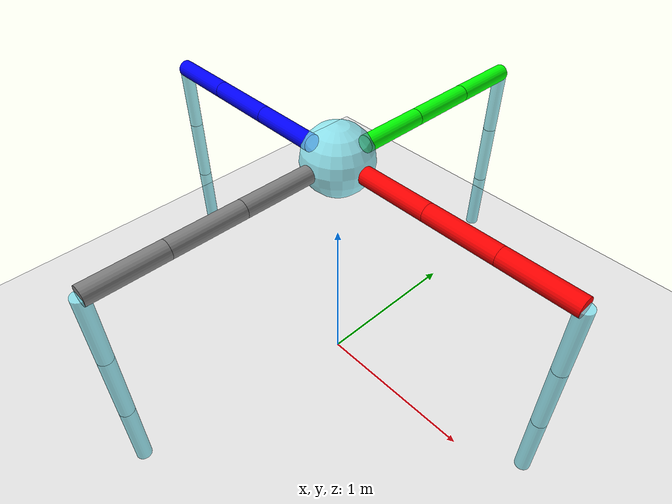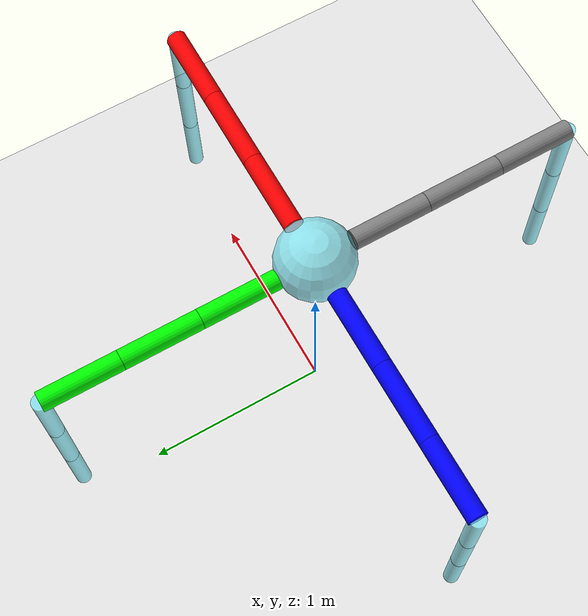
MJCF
<mujoco model="spider_robot"><actuator><motor name="leg1_upper_joint_motor" joint="leg1_upper_joint" gear="300" /><motor name="leg5_upper_joint_motor" joint="leg5_upper_joint" gear="300" /><motor name="leg9_upper_joint_motor" joint="leg9_upper_joint" gear="300" /><motor name="leg1_lower_joint_motor" joint="leg1_lower_joint" gear="300" /><motor name="leg5_lower_joint_motor" joint="leg5_lower_joint" gear="300" /><motor name="leg9_lower_joint_motor" joint="leg9_lower_joint" gear="300" /><motor name="leg2_upper_joint_motor" joint="leg2_upper_joint" gear="300" /><motor name="leg6_upper_joint_motor" joint="leg6_upper_joint" gear="300" /><motor name="leg10_upper_joint_motor" joint="leg10_upper_joint" gear="300" /><motor name="leg2_lower_joint_motor" joint="leg2_lower_joint" gear="300" /><motor name="leg6_lower_joint_motor" joint="leg6_lower_joint" gear="300" /><motor name="leg10_lower_joint_motor" joint="leg10_lower_joint" gear="300" /><motor name="leg3_upper_joint_motor" joint="leg3_upper_joint" gear="300" /><motor name="leg7_upper_joint_motor" joint="leg7_upper_joint" gear="300" /><motor name="leg11_upper_joint_motor" joint="leg11_upper_joint" gear="300" /><motor name="leg3_lower_joint_motor" joint="leg3_lower_joint" gear="300" /><motor name="leg7_lower_joint_motor" joint="leg7_lower_joint" gear="300" /><motor name="leg11_lower_joint_motor" joint="leg11_lower_joint" gear="300" /><motor name="leg4_upper_joint_motor" joint="leg4_upper_joint" gear="300" /><motor name="leg8_upper_joint_motor" joint="leg8_upper_joint" gear="300" /><motor name="leg12_upper_joint_motor" joint="leg12_upper_joint" gear="300" /><motor name="leg4_lower_joint_motor" joint="leg4_lower_joint" gear="300" /><motor name="leg8_lower_joint_motor" joint="leg8_lower_joint" gear="300" /><motor name="leg12_lower_joint_motor" joint="leg12_lower_joint" gear="300" /></actuator><option gravity="0 0 -9.81" /><worldbody><light diffuse=".5 .5 .5" pos="0 0 6" dir="0 0 -2" /><geom type="plane" size="5 5 0.1" rgba=".9 .9 .9 1" mass="1" /><body name="main" pos="0 0 1.5"><joint type="free" /><geom type="sphere" size="0.2" rgba="0.486 0.917 0.97 0.75" /><body name="leg1_upper_leg" pos="0.4 0 0"><joint name="leg1_upper_joint" type="hinge" pos="-0.2 0 0" axis="0 1 0" range="-15 0" damping="0.1" /><geom type="cylinder" size="0.05 0.2" rgba="1 0 0 1" euler="0 90 0" mass="2" /><body name="leg5_upper_leg" pos="0.4 0 0"><joint name="leg5_upper_joint" type="hinge" pos="-0.2 0 0" axis="0 1 0" range="-15 0" damping="0.1" /><geom type="cylinder" size="0.05 0.2" rgba="1 0 0 1" euler="0 90 0" mass="2" /><body name="leg9_upper_leg" pos="0.4 0 0"><joint name="leg9_upper_joint" type="hinge" pos="-0.2 0 0" axis="0 1 0" range="-15 0" damping="0.1" /><geom type="cylinder" size="0.05 0.2" rgba="1 0 0 1" euler="0 90 0" mass="2" /><body name="leg1_lower_leg" pos="0.2 0 -0.2"><joint name="leg1_lower_joint" type="hinge" pos="0 0 0.2" axis="0 1 0" range="0 30" damping="0.1" /><geom type="cylinder" pos="0 0 0" size="0.04 0.2" rgba="0.486 0.917 0.97 0.75" mass="10" /><body name="leg5_lower_leg" pos="0 0 -0.4"><joint name="leg5_lower_joint" type="hinge" pos="0 0 0.2" axis="0 1 0" range="0 30" damping="0.1" /><geom type="cylinder" pos="0 0 0" size="0.04 0.2" rgba="0.486 0.917 0.97 0.75" mass="10" /><body name="leg9_lower_leg" pos="0 0 -0.4"><joint name="leg9_lower_joint" type="hinge" pos="0 0 0.2" axis="0 1 0" range="0 30" damping="0.1" /><geom type="cylinder" pos="0 0 0" size="0.04 0.2" rgba="0.486 0.917 0.97 0.75" mass="10" /></body></body></body></body></body></body><body name="leg2_upper_leg" pos="0 0.4 0"><joint name="leg2_upper_joint" type="hinge" pos="0 -0.2 0" axis="1 0 0" range="0 15" damping="0.1" /><geom type="cylinder" size="0.05 0.2" rgba="0 1 0 1" euler="90 0 0" mass="2" /><body name="leg6_upper_leg" pos="0 0.4 0"><joint name="leg6_upper_joint" type="hinge" pos="0 -0.2 0" axis="1 0 0" range="0 15" damping="0.1" /><geom type="cylinder" size="0.05 0.2" rgba="0 1 0 1" euler="90 0 0" mass="2" /><body name="leg10_upper_leg" pos="0 0.4 0"><joint name="leg10_upper_joint" type="hinge" pos="0 -0.2 0" axis="1 0 0" range="0 15" damping="0.1" /><geom type="cylinder" size="0.05 0.2" rgba="0 1 0 1" euler="90 0 0" mass="2" /><body name="leg2_lower_leg" pos="0 0.2 -0.2"><joint name="leg2_lower_joint" type="hinge" pos="0 0 0.2" axis="1 0 0" range="-30 0" damping="0.1" /><geom type="cylinder" pos="0 0 0" size="0.04 0.2" rgba="0.486 0.917 0.97 0.75" mass="10" /><body name="leg6_lower_leg" pos="0 0 -0.4"><joint name="leg6_lower_joint" type="hinge" pos="0 0 0.2" axis="1 0 0" range="-30 0" damping="0.1" /><geom type="cylinder" pos="0 0 0" size="0.04 0.2" rgba="0.486 0.917 0.97 0.75" mass="10" /><body name="leg10_lower_leg" pos="0 0 -0.4"><joint name="leg10_lower_joint" type="hinge" pos="0 0 0.2" axis="1 0 0" range="-30 0" damping="0.1" /><geom type="cylinder" pos="0 0 0" size="0.04 0.2" rgba="0.486 0.917 0.97 0.75" mass="10" /></body></body></body></body></body></body><body name="leg3_upper_leg" pos="-0.4 0 0"><joint name="leg3_upper_joint" type="hinge" pos="0.2 0 0" axis="0 1 0" range="0 15" damping="0.1" /><geom type="cylinder" size="0.05 0.2" rgba="0 0 1 1" euler="0 -90 0" mass="2" /><body name="leg7_upper_leg" pos="-0.4 0 0"><joint name="leg7_upper_joint" type="hinge" pos="0.2 0 0" axis="0 1 0" range="0 15" damping="0.1" /><geom type="cylinder" size="0.05 0.2" rgba="0 0 1 1" euler="0 -90 0" mass="2" /><body name="leg11_upper_leg" pos="-0.4 0 0"><joint name="leg11_upper_joint" type="hinge" pos="0.2 0 0" axis="0 1 0" range="0 15" damping="0.1" /><geom type="cylinder" size="0.05 0.2" rgba="0 0 1 1" euler="0 -90 0" mass="2" /><body name="leg3_lower_leg" pos="-0.2 0 -0.2"><joint name="leg3_lower_joint" type="hinge" pos="0 0 0.2" axis="0 1 0" range="-30 0" damping="0.1" /><geom type="cylinder" pos="0 0 0" size="0.04 0.2" rgba="0.486 0.917 0.97 0.75" mass="10" /><body name="leg7_lower_leg" pos="0 0 -0.4"><joint name="leg7_lower_joint" type="hinge" pos="0 0 0.2" axis="0 1 0" range="-30 0" damping="0.1" /><geom type="cylinder" pos="0 0 0" size="0.04 0.2" rgba="0.486 0.917 0.97 0.75" mass="10" /><body name="leg11_lower_leg" pos="0 0 -0.4"><joint name="leg11_lower_joint" type="hinge" pos="0 0 0.2" axis="0 1 0" range="-30 0" damping="0.1" /><geom type="cylinder" pos="0 0 0" size="0.04 0.2" rgba="0.486 0.917 0.97 0.75" mass="10" /></body></body></body></body></body></body><body name="leg4_upper_leg" pos="0 -0.4 0"><joint name="leg4_upper_joint" type="hinge" pos="0 0.2 0" axis="1 0 0" range="-15 0" damping="0.1" /><geom type="cylinder" size="0.05 0.2" rgba="0.5 0.5 0.5 1" euler="-90 0 0" mass="2" /><body name="leg8_upper_leg" pos="0 -0.4 0"><joint name="leg8_upper_joint" type="hinge" pos="0 0.2 0" axis="1 0 0" range="-15 0" damping="0.1" /><geom type="cylinder" size="0.05 0.2" rgba="0.5 0.5 0.5 1" euler="-90 0 0" mass="2" /><body name="leg12_upper_leg" pos="0 -0.4 0"><joint name="leg12_upper_joint" type="hinge" pos="0 0.2 0" axis="1 0 0" range="-15 0" damping="0.1" /><geom type="cylinder" size="0.05 0.2" rgba="0.5 0.5 0.5 1" euler="-90 0 0" mass="2" /><body name="leg4_lower_leg" pos="0 -0.2 -0.2"><joint name="leg4_lower_joint" type="hinge" pos="0 0 0.2" axis="1 0 0" range="0 30" damping="0.1" /><geom type="cylinder" pos="0 0 0" size="0.04 0.2" rgba="0.486 0.917 0.97 0.75" mass="10" /><body name="leg8_lower_leg" pos="0 0 -0.4"><joint name="leg8_lower_joint" type="hinge" pos="0 0 0.2" axis="1 0 0" range="0 30" damping="0.1" /><geom type="cylinder" pos="0 0 0" size="0.04 0.2" rgba="0.486 0.917 0.97 0.75" mass="10" /><body name="leg12_lower_leg" pos="0 0 -0.4"><joint name="leg12_lower_joint" type="hinge" pos="0 0 0.2" axis="1 0 0" range="0 30" damping="0.1" /><geom type="cylinder" pos="0 0 0" size="0.04 0.2" rgba="0.486 0.917 0.97 0.75" mass="10" /></body></body></body></body></body></body></body></worldbody></mujoco>
